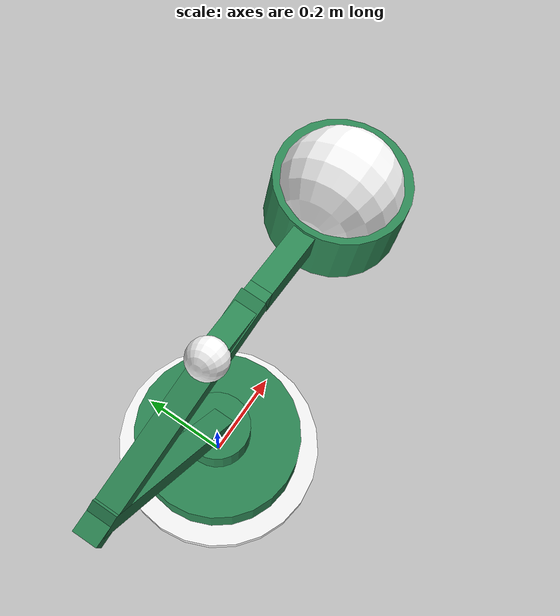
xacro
<?xml version="1.0"?>
<robot name="Gertie" xmlns:xacro="http://ros.org/wiki/xacro">

  <xacro:property name="base_link_length" value="0.05" />
  <xacro:property name="base_link_radius" value="0.2375" />

  <xacro:property name="base_cylinder_link_length" value="0.15" />
  <xacro:property name="base_cylinder_link_radius" value="0.19" />

  <xacro:property name="active_cylinder_link_length" value="0.1075" />
  <xacro:property name="active_cylinder_link_radius" value="0.0748" />

  <xacro:property name="first_active_rod_length" value="0.05" />
  <xacro:property name="first_active_rod_width" value="0.05" />
  <xacro:property name="first_active_rod_height" value="0.74" />

  <xacro:property name="second_active_rod_length" value="0.05" />
  <xacro:property name="second_active_rod_width" value="0.05" />
  <xacro:property name="second_active_rod_height" value="0.5" />

  <xacro:property name="third_active_rod_length" value="0.045" />
  <xacro:property name="third_active_rod_width" value="0.045" />
  <xacro:property name="third_active_rod_height" value="0.15" />

  <xacro:property name="fourth_active_rod_length" value="0.065" />
  <xacro:property name="fourth_active_rod_width" value="0.045" />
  <xacro:property name="fourth_active_rod_height" value="0.15" />

  <xacro:property name="fixed_cylinder_link_length" value="0.13" />
  <xacro:property name="fixed_cylinder_link_radius" value="0.13" />

  <material name="blue">
    <color rgba="0 0 0.8 1"/>
  </material>
  <material name="black">
    <color rgba="0 0 0 1"/>
  </material>
  <material name="white">
    <color rgba="1 1 1 1"/>
  </material>
  <material name="seegreen">
    <color rgba="0.18 0.545 0.34 1"/>
  </material>
  <material name="red">
    <color rgba="0.8 0 0 1"/>
  </material>
  <material name="transparent">
    <color rgba="0.8 0 0 0"/>
  </material>

  <link name="base_link">
    <visual>
      <geometry>
        <cylinder length="${base_link_length}" radius="${base_link_radius}"/>
      </geometry>
      <material name="white"/>
    </visual>
    <collision>
      <geometry>
        <cylinder length="${base_link_length}" radius="${base_link_radius}"/>
      </geometry>
    </collision>
    <inertial>
      <mass value="10"/>
      <inertia ixx="1.0" ixy="0.0" ixz="0.0" iyy="1.0" iyz="0.0" izz="1.0"/>
    </inertial>
  </link>

  <link name="base_cylinder">
    <visual>
      <origin rpy="0.0 0 0" xyz="0 0 0"/>
      <geometry>
        <cylinder length="${base_cylinder_link_length}" radius="${base_cylinder_link_radius}"/>
      </geometry>
      <material name="seegreen"/>
    </visual>
    <collision>
      <geometry>
        <cylinder length="${base_cylinder_link_length}" radius="${base_cylinder_link_radius}"/>
      </geometry>
    </collision>
    <inertial>
      <mass value="10"/>
      <inertia ixx="1.0" ixy="0.0" ixz="0.0" iyy="1.0" iyz="0.0" izz="1.0"/>
    </inertial>
  </link>

  <joint name="base_link_to_base_cylinder" type="fixed">
    <parent link="base_link"/>
    <child link="base_cylinder"/>
    <origin xyz="0 0 ${(base_link_length+base_cylinder_link_length)/2}"/>
  </joint>

  <link name="active_cylinder">
    <visual>
      <origin rpy="0.0 0 0" xyz="0 0 0.0"/>
      <geometry>
        <cylinder length="${active_cylinder_link_length}" radius="${active_cylinder_link_radius}"/>
      </geometry>
      <material name="seegreen"/>
    </visual>
    <collision>
      <geometry>
        <cylinder length="${active_cylinder_link_length}" radius="${active_cylinder_link_length}"/>
      </geometry>
    </collision>
    <inertial>
      <mass value="10"/>
      <inertia ixx="1.0" ixy="0.0" ixz="0.0" iyy="1.0" iyz="0.0" izz="1.0"/>
    </inertial>
  </link>

  <joint name="base_cylinder_to_active_cylinder" type="revolute">
    <axis xyz="0 0 1"/>
    <limit effort="100.0" lower="-1.57" upper="1.57" velocity="0.5"/>
    <origin rpy="0 0 0" xyz="0 0 ${(base_cylinder_link_length+active_cylinder_link_length)/2}"/>
    <parent link="base_cylinder"/>
    <child link="active_cylinder"/>
  </joint>

  <link name="first_active_rod">
    <visual>
      <origin rpy="0.0 0 0" xyz="0 0 ${first_active_rod_height/2.5}"/>  //This controls the orginal point of the link
      <geometry>
        <box size="${first_active_rod_length} ${first_active_rod_width} ${first_active_rod_height}"/>
      </geometry>
      <material name="seegreen"/>
    </visual>
    <collision>
      <geometry>
        <box size="${first_active_rod_length} ${first_active_rod_width} ${first_active_rod_height}"/>
      </geometry>
    </collision>
    <inertial>
      <mass value="10"/>
      <inertia ixx="1.0" ixy="0.0" ixz="0.0" iyy="1.0" iyz="0.0" izz="1.0"/>
    </inertial>
  </link>

  <joint name="active_cylinder_to_first_active_rod" type="revolute">
    <axis xyz="0 1 0"/>
    <limit effort="100.0" lower="-0.265" upper="1.305" velocity="0.5"/>
    <origin rpy="0 -0.52 0" xyz="0 0 ${active_cylinder_link_length/2}"/>
    <parent link="active_cylinder"/>
    <child link="first_active_rod"/>
  </joint>

  <link name="second_active_rod">
    <visual>
      <origin rpy="0.0 0 0" xyz="0 0 ${second_active_rod_height/2.5}"/>  //This controls the orginal point of the link
      <geometry>
        <box size="${second_active_rod_length} ${second_active_rod_width} ${second_active_rod_height}"/>
      </geometry>
      <material name="seegreen"/>
    </visual>
    <collision>
      <geometry>
        <box size="${second_active_rod_length} ${second_active_rod_width} ${second_active_rod_height}"/>
      </geometry>
    </collision>
    <inertial>
      <mass value="10"/>
      <inertia ixx="1.0" ixy="0.0" ixz="0.0" iyy="1.0" iyz="0.0" izz="1.0"/>
    </inertial>
  </link>

  <joint name="first_active_rod_to_second_active_rod" type="revolute">
    <axis xyz="0 1 0"/>
    <limit effort="100.0" lower="-0.785" upper="0.785" velocity="0.5"/>
    <origin rpy="0 1.98 0" xyz="0 0 ${first_active_rod_height-0.1}"/>
    <parent link="first_active_rod"/>
    <child link="second_active_rod"/>
  </joint>

  <link name="third_active_rod">
    <visual>
      <origin rpy="0.0 0 0" xyz="-0.01 0 ${-third_active_rod_height+0.14}"/>  //This controls the orginal point of the link
      <geometry>
        <box size="${third_active_rod_length} ${third_active_rod_width} ${third_active_rod_height}"/>
      </geometry>
      <material name="seegreen"/>
    </visual>
    <collision>
      <geometry>
        <box size="${third_active_rod_length} ${third_active_rod_width} ${third_active_rod_height}"/>
      </geometry>
    </collision>
    <inertial>
      <mass value="10"/>
      <inertia ixx="1.0" ixy="0.0" ixz="0.0" iyy="1.0" iyz="0.0" izz="1.0"/>
    </inertial>
  </link>

  <joint name="second_active_rod_to_third_active_rod" type="revolute">
    <axis xyz="0 1 0"/>
    <limit effort="100.0" lower="0.0" upper="1.047" velocity="0.5"/>
    <origin rpy="0 0.349 0" xyz="0 0 ${second_active_rod_height-0.1}"/>
    <parent link="second_active_rod"/>
    <child link="third_active_rod"/>
  </joint>

  <link name="first_sphere">
    <visual>
      <origin rpy="0.0 0 0" xyz="0.02 0 ${-third_active_rod_length-0.05}"/>  //This controls the orginal point of the link
      <geometry>
        <sphere radius = "0.04"/>
      </geometry>
      <material name="white"/>
    </visual>
    <collision>
      <geometry>
        <sphere radius = "0.04"/>
      </geometry>
    </collision>
    <inertial>
      <mass value="10"/>
      <inertia ixx="1.0" ixy="0.0" ixz="0.0" iyy="1.0" iyz="0.0" izz="1.0"/>
    </inertial>
  </link>

  <joint name="third_active_rod_to_first_sphere" type="fixed">
    <axis xyz="0 1 0"/>
    <limit effort="100.0" lower="0.0" upper="1.047" velocity="0.5"/>
    <origin rpy="0 0.349 0" xyz="0 0 0"/>
    <parent link="third_active_rod"/>
    <child link="first_sphere"/>
  </joint>

  <link name="fourth_active_rod">
    <visual>
      <origin rpy="0.0 0 0" xyz="${third_active_rod_width/2+0.01} 0 ${third_active_rod_height-0.01}"/>  //This controls the orginal point of the link
      <geometry>
        <box size="${fourth_active_rod_length} ${fourth_active_rod_width} ${fourth_active_rod_height}"/>
      </geometry>
      <material name="seegreen"/>
    </visual>
    <collision>
      <geometry>
        <box size="${fourth_active_rod_length} ${fourth_active_rod_width} ${fourth_active_rod_height}"/>
      </geometry>
    </collision>
    <inertial>
      <mass value="10"/>
      <inertia ixx="1.0" ixy="0.0" ixz="0.0" iyy="1.0" iyz="0.0" izz="1.0"/>
    </inertial>
  </link>

  <joint name="fourth_active_rod_to_third_active_rod" type="revolute">
    <axis xyz="0 0 1"/>
    <limit effort="100.0" lower="-1.57" upper="1.57" velocity="0.5"/>
    <origin rpy="0 0 0" xyz="${-third_active_rod_width/2-0.01} 0 0"/>
    <parent link="third_active_rod"/>
    <child link="fourth_active_rod"/>
  </joint>

  <link name="second_sphere_of_lampshade">
    <visual>
      <origin rpy="0.0 0 0" xyz="0.02 0 0"/>  //This controls the orginal point of the link
      <geometry>
        <sphere radius = "0.12"/>
      </geometry>
      <material name="white"/>
    </visual>
    <collision>
      <geometry>
        <sphere radius = "0.12"/>
      </geometry>
    </collision>
    <inertial>
      <mass value="10"/>
      <inertia ixx="1.0" ixy="0.0" ixz="0.0" iyy="1.0" iyz="0.0" izz="1.0"/>
    </inertial>
  </link>

  <joint name="second_sphere_of_lampshade_to_fourth_active_rod" type="fixed">
    <axis xyz="0 1 0"/>
    <limit effort="100.0" lower="0.0" upper="1.047" velocity="0.5"/>
    <origin rpy="-0.05 0 0" xyz="0 0 ${fourth_active_rod_height+0.18}"/>
    <parent link="fourth_active_rod"/>
    <child link="second_sphere_of_lampshade"/>
  </joint>

  <link name="fixed_cylinder">
    <visual>
      <origin rpy="0 1.505 0" xyz="0 0 0"/>
      <geometry>
        <cylinder length="${fixed_cylinder_link_length}" radius="${fixed_cylinder_link_radius}"/>
      </geometry>
      <material name="seegreen"/>
    </visual>
    <collision>
      <geometry>
        <cylinder length="${fixed_cylinder_link_length}" radius="${fixed_cylinder_link_radius}"/>
      </geometry>
    </collision>
    <inertial>
      <mass value="10"/>
      <inertia ixx="1.0" ixy="0.0" ixz="0.0" iyy="1.0" iyz="0.0" izz="1.0"/>
    </inertial>
  </link>

  <joint name="fixed_cylinder_to_fourth_active_rod" type="fixed">
    <origin xyz="0.05 0 ${-fourth_active_rod_height/2+0.41}"/>
    <parent link="fourth_active_rod"/>
    <child link="fixed_cylinder"/>
  </joint>

</robot>
